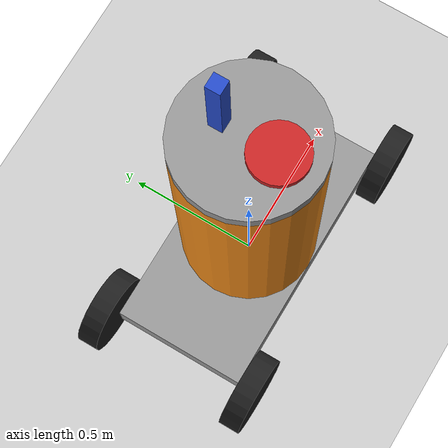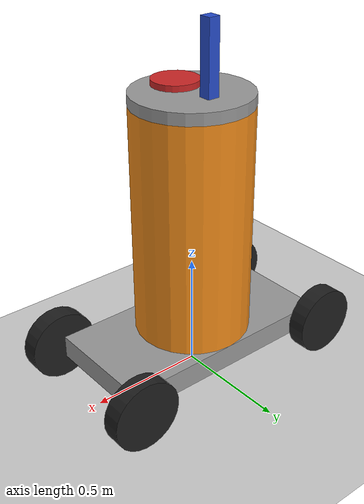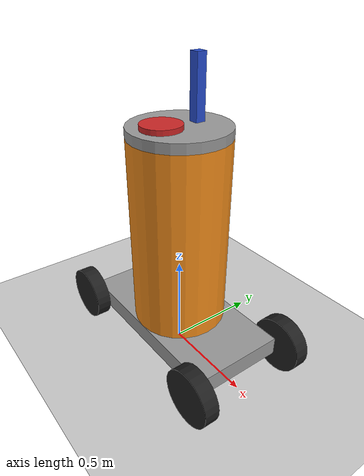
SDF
<sdf version="1.7">
 <world name="my_test_world">
  <physics name="1ms" type="ode">
   <max_step_size>0.001</max_step_size>
   <real_time_factor>1</real_time_factor>
   <real_time_update_rate>1000</real_time_update_rate>
  </physics>
  <plugin filename="gz-sim-physics-system" name="gz::sim::systems::Physics"/>
  <plugin filename="gz-sim-user-commands-system" name="gz::sim::systems::UserCommands"/>
  <plugin filename="gz-sim-scene-broadcaster-system" name="gz::sim::systems::SceneBroadcaster"/>
  <light type="directional" name="sun">
   <pose>0 0 10 0 0 0</pose>
   <diffuse>0.8 0.8 0.8 1</diffuse>
   <specular>0.2 0.2 0.2 1</specular>
   <direction>-0.5 0.1 -0.9</direction>
  </light>
  <model name="ground_plane">
   <static>true</static>
   <link name="link">
    <collision name="collision">
     <geometry><plane><normal>0 0 1</normal><size>100 100</size></plane></geometry>
    </collision>
    <visual name="visual">
     <geometry><plane><normal>0 0 1</normal><size>100 100</size></plane></geometry>
     <material>
      <ambient>0.8 0.8 0.8 1</ambient>
      <diffuse>0.8 0.8 0.8 1</diffuse>
      <specular>0.8 0.8 0.8 1</specular>
     </material>
    </visual>
   </link>
  </model>
  <include><uri>file://cart.sdf</uri><name>mobile_platform</name></include>
  <joint name="platform_to_arm_joint" type="fixed">
   <parent>mobile_platform::arm_base_mount</parent>
   <child>ur30_arm::base_link</child>
   <pose relative_to="mobile_platform::arm_base_mount">0 0 1.25 0 0 0</pose>
  </joint>
 </world>
</sdf>

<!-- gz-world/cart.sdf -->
<sdf version="1.7">
<!-- Updated SDF version for better compatibility with Gz Harmonic, though 1.5 often works -->
  <model name="p_robot_platform_with_arm_base">
    <link name="chassis">
      <pose>0 0 0.15  0 0 0</pose>
      <inertial>
        <pose>0.1 0 0  0 0 0</pose>
        <!-- Original chassis inertia shifted, consider recalculating combined inertia later -->
        <mass>10</mass> <!-- Original chassis mass -->
        <inertia>
          <ixx>0.21666666666666667</ixx>
          <iyy>0.8416666666666667</iyy>
          <izz>1.0416666666666667</izz>
          <ixy>0</ixy>
          <ixz>0</ixz>
          <iyz>0</iyz>
        </inertia>
      </inertial>
      <collision name="collision">
        <geometry>
          <box>
            <size>1.0 0.5 0.1</size>
          </box>
        </geometry>
      </collision>
      <visual name="visual">
        <geometry>
          <box>
            <size>1.0 0.5 0.1</size>
          </box>
        </geometry>
        <material>
          <script>
            <uri>file://media/materials/scripts/gazebo.material</uri>
            <name>Gazebo/Grey</name>
          </script>
        </material>
      </visual>
    </link>

    <link name="wheel_front_left">
      <pose>0.5 0.298 0.15  -1.5707963267948966 -0.08726646259971647 0</pose>
      <inertial>
        <mass>0.5</mass>
        <inertia>
          <ixx>0.0030791666666666667</ixx>
          <iyy>0.0030791666666666667</iyy>
          <izz>0.005625</izz>
          <ixy>0</ixy>
          <ixz>0</ixz>
          <iyz>0</iyz>
        </inertia>
      </inertial>
      <collision name="collision">
        <geometry>
          <cylinder>
            <radius>0.15</radius>
            <length>0.08</length>
          </cylinder>
        </geometry>
      </collision>
      <visual name="visual">
        <geometry>
          <cylinder>
            <radius>0.15</radius>
            <length>0.08</length>
          </cylinder>
        </geometry>
        <material>
          <script>
            <uri>file://media/materials/scripts/gazebo.material</uri>
            <name>Gazebo/Black</name>
          </script>
        </material>
      </visual>
    </link>

    <joint name="wheel_front_left_steer_spin" type="universal">
      <parent>chassis</parent>
      <child>wheel_front_left</child>
      <axis>
        <xyz expressed_in="__model__">0 -1 0</xyz> <!-- Steering axis -->
        <limit>
          <lower>-0.6108652381980153</lower>
          <upper>0.6108652381980153</upper>
        </limit>
      </axis>
      <axis2>
        <xyz expressed_in="__model__">0 0 1</xyz> <!-- Spin axis -->
      </axis2>
    </joint>

    <link name="wheel_front_right">
      <pose>0.5 -0.298 0.15  -1.5707963267948966 -0.08726646259971647 0</pose>
      <inertial>
        <mass>0.5</mass>
        <inertia>
          <ixx>0.0030791666666666667</ixx>
          <iyy>0.0030791666666666667</iyy>
          <izz>0.005625</izz>
          <ixy>0</ixy>
          <ixz>0</ixz>
          <iyz>0</iyz>
        </inertia>
      </inertial>
      <collision name="collision">
        <geometry>
          <cylinder>
            <radius>0.15</radius>
            <length>0.08</length>
          </cylinder>
        </geometry>
      </collision>
      <visual name="visual">
        <geometry>
          <cylinder>
            <radius>0.15</radius>
            <length>0.08</length>
          </cylinder>
        </geometry>
        <material>
          <script>
            <uri>file://media/materials/scripts/gazebo.material</uri>
            <name>Gazebo/Black</name>
          </script>
        </material>
      </visual>
    </link>

    <joint name="wheel_front_right_steer_spin" type="universal">
      <parent>chassis</parent>
      <child>wheel_front_right</child>
      <axis>
        <xyz expressed_in="__model__">0 -1 0</xyz> <!-- Steering axis -->
        <limit>
          <lower>-0.6108652381980153</lower>
          <upper>0.6108652381980153</upper>
        </limit>
      </axis>
      <axis2>
        <xyz expressed_in="__model__">0 0 1</xyz> <!-- Spin axis -->
      </axis2>
    </joint>

    <link name="wheel_rear_left">
      <pose>-0.5 0.298 0.15  -1.5707963267948966 0 0</pose>
      <inertial>
        <mass>0.5</mass>
        <inertia>
          <ixx>0.0030791666666666667</ixx>
          <iyy>0.0030791666666666667</iyy>
          <izz>0.005625</izz>
          <ixy>0</ixy>
          <ixz>0</ixz>
          <iyz>0</iyz>
        </inertia>
      </inertial>
      <collision name="collision">
        <geometry>
          <cylinder>
            <radius>0.15</radius>
            <length>0.08</length>
          </cylinder>
        </geometry>
      </collision>
      <visual name="visual">
        <geometry>
          <cylinder>
            <radius>0.15</radius>
            <length>0.08</length>
          </cylinder>
        </geometry>
        <material>
          <script>
            <uri>file://media/materials/scripts/gazebo.material</uri>
            <name>Gazebo/Black</name>
          </script>
        </material>
      </visual>
    </link>
    <joint name="wheel_rear_left_spin" type="revolute">
      <parent>chassis</parent>
      <child>wheel_rear_left</child>
      <axis>
        <xyz expressed_in="__model__">0 0 1</xyz>
      </axis>
    </joint>

    <link name="wheel_rear_right">
      <pose>-0.5 -0.298 0.15  -1.5707963267948966 0 0</pose>
      <inertial>
        <mass>0.5</mass>
        <inertia>
          <ixx>0.0030791666666666667</ixx>
          <iyy>0.0030791666666666667</iyy>
          <izz>0.005625</izz>
          <ixy>0</ixy>
          <ixz>0</ixz>
          <iyz>0</iyz>
        </inertia>
      </inertial>
      <collision name="collision">
        <geometry>
          <cylinder>
            <radius>0.15</radius>
            <length>0.08</length>
          </cylinder>
        </geometry>
      </collision>
      <visual name="visual">
        <geometry>
          <cylinder>
            <radius>0.15</radius>
            <length>0.08</length>
          </cylinder>
        </geometry>
        <material>
          <script>
            <uri>file://media/materials/scripts/gazebo.material</uri>
            <name>Gazebo/Black</name>
          </script>
        </material>
      </visual>
    </link>
    <joint name="wheel_rear_right_spin" type="revolute">
      <parent>chassis</parent>
      <child>wheel_rear_right</child>
      <axis>
        <xyz expressed_in="__model__">0 0 1</xyz>
      </axis>
    </joint>

    <!-- === ADDED UPPER STRUCTURE === -->
    <link name="cylindrical_body_link">
      <!-- Define link origin at its geometric center for a 1m tall cylinder -->
      <pose>0 0 0.35 0 0 0</pose> <!-- Pose of the CoM relative to the link's origin (which we place at its base center) -->
                                  <!-- Actually, let's place link origin at its base for simpler jointing -->
      <pose>0 0 0 0 0 0</pose> <!-- Link origin at the center of its base plane -->
      <inertial>
        <mass>100</mass>
        <!-- Inertia of a cylinder of radius r=0.25, height h=1.0, mass m=100 -->
        <!-- Ixx = Iyy = m/12 * (3*r^2 + h^2) = 100/12 * (3*0.25^2 + 1^2) = 100/12 * (0.1875 + 1) = 9.8958 -->
        <!-- Izz = 1/2 * m * r^2 = 0.5 * 100 * 0.25^2 = 3.125 -->
        <inertia>
          <ixx>9.896</ixx><ixy>0</ixy><ixz>0</ixz>
          <iyy>9.896</iyy><iyz>0</iyz>
          <izz>3.125</izz>
        </inertia>
        <pose>0 0 0.35 0 0 0</pose> <!-- Pose of the CoM relative to the link's origin (at base center) -->
      </inertial>
      <visual name="cyl_visual">
        <pose>0 0 0.35 0 0 0</pose> <!-- Visual center relative to link's origin (at base center) -->
        <geometry><cylinder><radius>0.25</radius><length>1.0</length></cylinder></geometry>
        <material><script><uri>file://media/materials/scripts/gazebo.material</uri><name>Gazebo/Orange</name></script></material>
      </visual>
      <collision name="cyl_collision">
        <pose>0 0 0.35 0 0 0</pose> <!-- Collision center relative to link's origin (at base center) -->
        <geometry><cylinder><radius>0.25</radius><length>1.0</length></cylinder></geometry>
      </collision>
    </link>
    <joint name="cylindrical_body_joint" type="fixed">
      <parent>chassis</parent>
      <child>cylindrical_body_link</child>
      <!-- Chassis origin Z=0.15 (world), chassis top surface is at Z=0.05 relative to chassis origin -->
      <!-- Place cylindrical_body_link's origin (its base center) onto the chassis top surface center -->
      <pose>0 0 0.05 0 0 0</pose> <!-- Relative to chassis frame, places child's origin -->
    </joint>

    <link name="rotating_turntable_link">
      <!-- Cylindrical_body_link's origin is at its base. Its top surface is at Z=1.0 relative to its origin. -->
      <!-- Turntable (0.05m thick) base sits on cylindrical_body_link's top. -->
      <!-- Turntable origin at its base center. -->
      <pose>0 0 1.2 0 0 0</pose> <!-- Link origin at its base center -->
      <inertial>
        <mass>10</mass>
        <!-- Inertia for a disk r=0.25, h=0.05, m=10 -->
        <!-- Ixx = Iyy = m/12 * (3*r^2 + h^2) = 10/12 * (3*0.25^2 + 0.05^2) = 0.1583 -->
        <!-- Izz = 1/2 * m * r^2 = 0.5 * 10 * 0.25^2 = 0.3125 -->
        <inertia>
          <ixx>0.158</ixx><ixy>0</ixy><ixz>0</ixz>
          <iyy>0.158</iyy><iyz>0</iyz>
          <izz>0.3125</izz>
        </inertia>
        <pose>0 0 0.025 0 0 0</pose> <!-- CoM relative to link's origin (at base center) -->
      </inertial>
      <visual name="turntable_visual">
        <pose>0 0 0.025 0 0 0</pose> <!-- Visual center relative to link's origin (at base center) -->
        <geometry><cylinder><radius>0.25</radius><length>0.05</length></cylinder></geometry>
        <material><script><uri>file://media/materials/scripts/gazebo.material</uri><name>Gazebo/Grey</name></script></material>
      </visual>
      <collision name="turntable_collision">
        <pose>0 0 0.025 0 0 0</pose> <!-- Collision center relative to link's origin (at base center) -->
        <geometry><cylinder><radius>0.25</radius><length>0.05</length></cylinder></geometry>
      </collision>
    </link>
    <joint name="turntable_joint" type="revolute">
      <parent>cylindrical_body_link</parent>
      <child>rotating_turntable_link</child>
      <!-- Place turntable_link's origin (its base) on top of cylindrical_body_link (at Z=1.0 from cyl_body_link's origin) -->
      <pose>0 0 1.2 0 0 0</pose> <!-- Relative to cylindrical_body_link frame -->
      <axis>
        <xyz>0 0 1</xyz>
        <limit><lower>0</lower><upper>6.28318</upper></limit>
      </axis>
    </joint>

    <link name="vision_mast_link">
      <!-- Vision mast (0.3m tall), origin at its base center -->
      <pose>0 0.1 1.25 0 0 0 </pose> <!-- Relative to rotating_turntable_link (Y offset, base on turntable) -->
      <inertial>
        <mass>5</mass>
        <inertia><ixx>0.1</ixx><ixy>0</ixy><ixz>0</ixz><iyy>0.1</iyy><iyz>0</iyz><izz>0.1</izz></inertia> <!-- Placeholder -->
        <pose>0 0 0.15 0 0 0</pose> <!-- CoM relative to link's origin (at base center) -->
      </inertial>
      <visual name="vision_mast_visual">
        <pose>0 0 0.15 0 0 0</pose> <!-- Visual center relative to link's origin (at base center) -->
        <geometry><box><size>0.05 0.05 0.3</size></box></geometry>
        <material><script><uri>file://media/materials/scripts/gazebo.material</uri><name>Gazebo/Blue</name></script></material>
      </visual>
      <collision name="vision_mast_collision">
        <pose>0 0 0.15 0 0 0</pose> <!-- Collision center relative to link's origin (at base center) -->
        <geometry><box><size>0.05 0.05 0.3</size></box></geometry>
      </collision>
      <sensor name="camera" type="camera">
        <pose>0 0 0.15 0 0 0</pose> <!-- On top of the mast, relative to vision_mast_link -->
        <camera name="head_camera">
            <horizontal_fov>1.39626</horizontal_fov>
            <image><width>800</width><height>800</height><format>R8G8B8</format></image>
            <clip><near>0.02</near><far>300</far></clip>
        </camera>
        <always_on>1</always_on>
        <update_rate>30</update_rate>
        <visualize>true</visualize>
        <!-- Removed incompatible libgazebo_ros_camera.so plugin -->
        <!-- For Gz Harmonic, use ros_gz_bridge or Gz-native ROS 2 publishing -->
      </sensor>
    </link>
    <joint name="vision_mast_joint" type="fixed">
      <parent>rotating_turntable_link</parent>
      <child>vision_mast_link</child>
      <pose>0 0 0 0 0 0</pose> <!-- Relative pose of child wrt parent joint frame -->
    </joint>

    <link name="arm_base_mount">
      <!-- Arm base mount, origin at its geometric center, sitting on turntable -->
      <pose>0 -0.1 1.25 0 0 0 </pose> <!-- Relative to rotating_turntable_link (Y offset, base on turntable) -->
      <inertial>
        <mass>1</mass>
        <inertia><ixx>0.01</ixx><ixy>0</ixy><ixz>0</ixz><iyy>0.01</iyy><iyz>0</iyz><izz>0.01</izz></inertia>
        <!-- Assuming a small box or plate, CoM at origin if origin is geometric center -->
        <pose>0 0 0 0 0 0</pose>
      </inertial>
      <!-- Add a visual for arm_base_mount for clarity, e.g., a small cylinder or box -->
      <visual name="arm_base_mount_visual">
        <pose>0 0 0.0125 0 0 0</pose> <!-- Example: a small cylinder 0.025m high -->
        <geometry><cylinder><radius>0.1</radius><length>0.025</length></cylinder></geometry>
        <material><script><uri>file://media/materials/scripts/gazebo.material</uri><name>Gazebo/Red</name></script></material>
      </visual>
      <collision name="arm_base_mount_collision">
        <pose>0 0 0.0125 0 0 0</pose>
        <geometry><cylinder><radius>0.1</radius><length>0.025</length></cylinder></geometry>
      </collision>
    </link>
    <joint name="arm_base_mount_joint" type="fixed">
      <parent>rotating_turntable_link</parent>
      <child>arm_base_mount</child>
      <pose>0 0 0 0 0 0</pose> <!-- Relative pose of child wrt parent joint frame -->
    </joint>
    <!-- TODO: Add Gazebo Harmonic compatible plugins for controlling steering, rear wheel drive, and turntable joint -->
    <!-- Example for joint controller (needs to be configured correctly with topics) -->
  </model>
</sdf>
